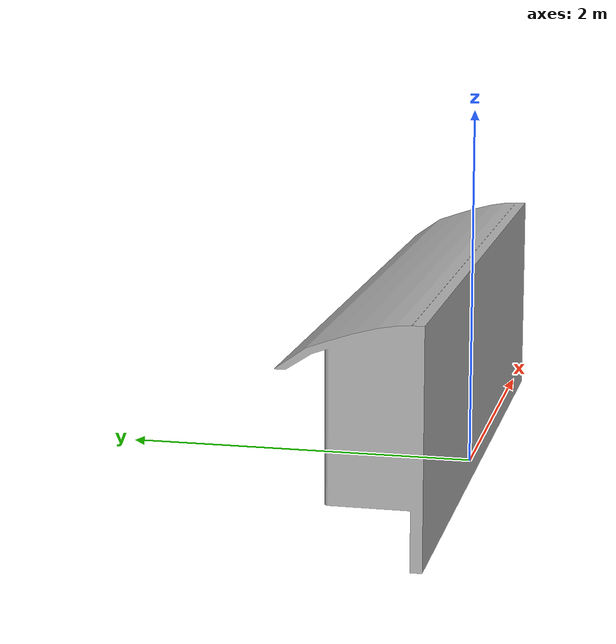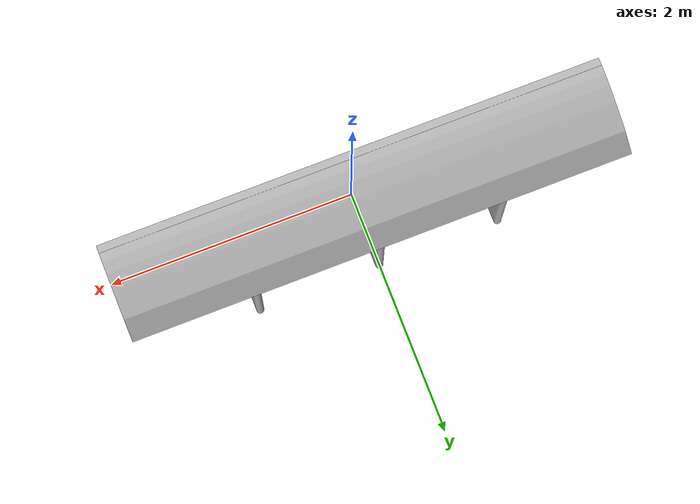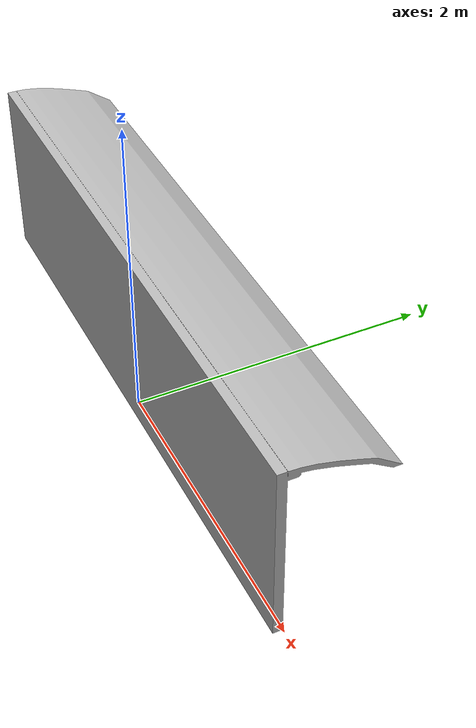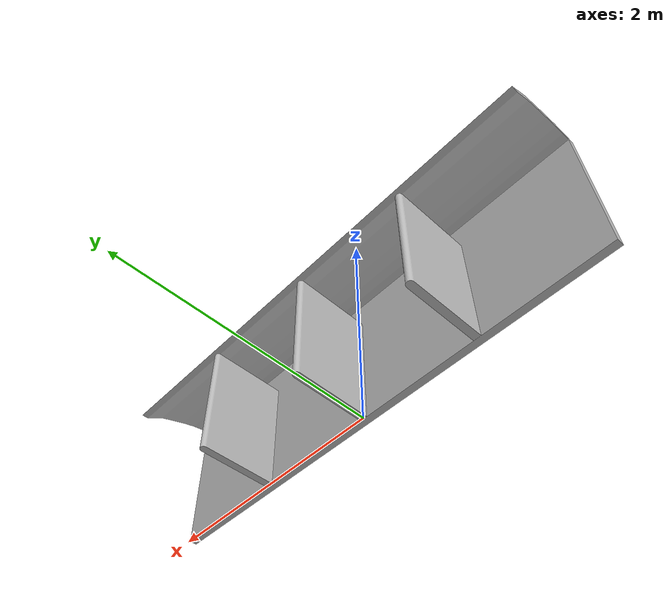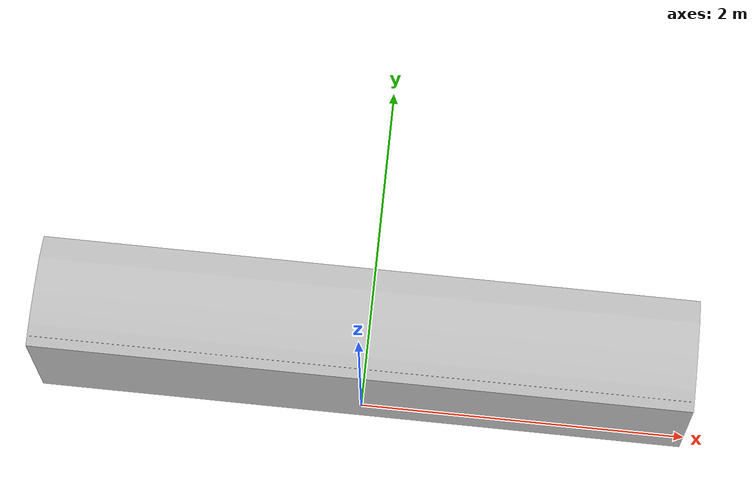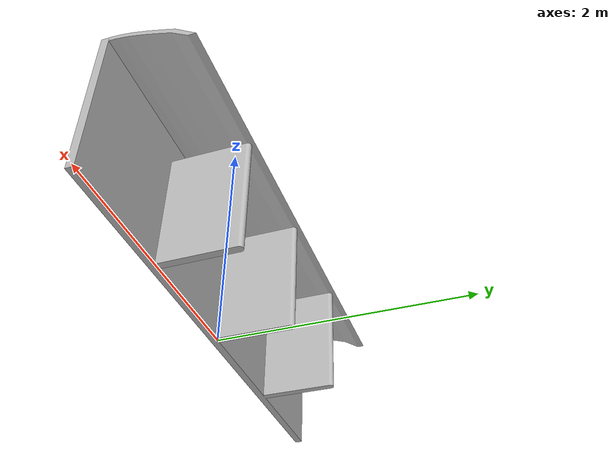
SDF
<?xml version="1.0" ?>
<sdf version="1.5">
<model name="parking">
  <static>true</static>
  <link name="parking_link">

  <visual name="parking">
    <pose>0 0 0 0 0 0</pose>
    <geometry>
      <mesh><uri>model://meshes/wholeparkingblock.dae</uri><scale>1.2 1.2 1.2</scale></mesh>
    </geometry>
  </visual>

  <collision name="parking">
    <pose>0 0 0 0 0 0</pose>
    <geometry>
      <mesh><uri>model://meshes/wholeparkingblock.dae</uri><scale>1.2 1.2 1.2</scale></mesh>
    </geometry>
  </collision>

  </link>
</model>
</sdf>
